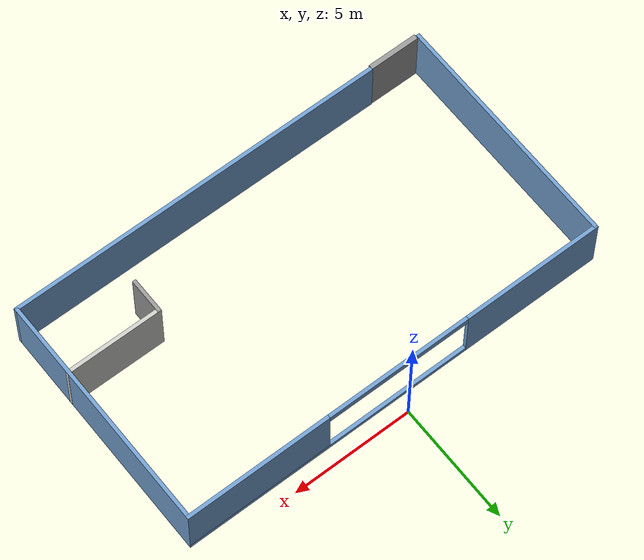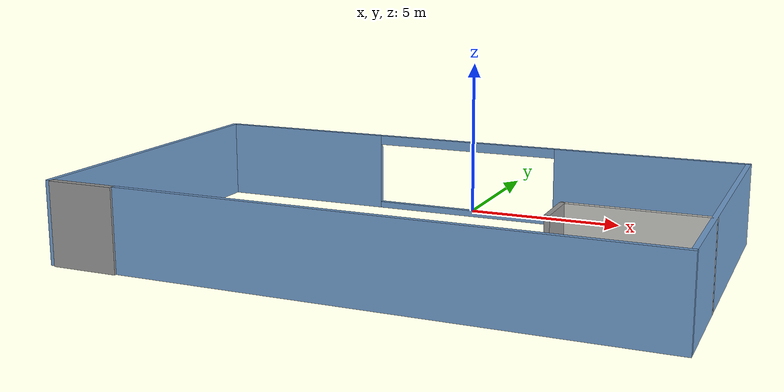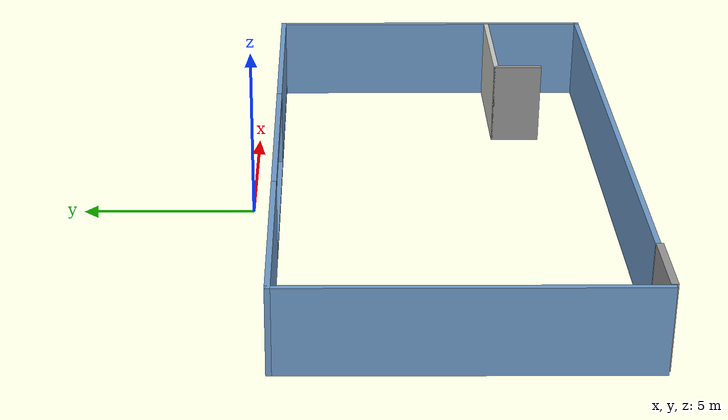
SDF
<?xml version='1.0'?>
<sdf version='1.7'>
  <model name='small_hospital'>
    <pose>0.066291 -5.3125 0 0 -0 0</pose>
    <link name='Door_0'>
      <collision name='Door_0_Collision'>
        <geometry>
          <box>
            <size>2.09068 0.2 2.5</size>
          </box>
        </geometry>
        <pose>0 0 1.25 0 -0 0</pose>
      </collision>
      <visual name='Door_0_Visual'>
        <pose>0 0 1.25 0 -0 0</pose>
        <geometry>
          <box>
            <size>2.09068 0.2 2.5</size>
          </box>
        </geometry>
        <material>
          <script>
            <uri>file://media/materials/scripts/gazebo.material</uri>
            <name>Gazebo/Grey</name>
          </script>
        </material>
      </visual>
      <pose>-7.78719 -5.27904 0 0 -0 0</pose>
    </link>
    <link name='Wall_0'>
      <collision name='Wall_0_Collision'>
        <geometry>
          <box>
            <size>10 0.15 2.5</size>
          </box>
        </geometry>
        <pose>0 0 1.25 0 -0 0</pose>
      </collision>
      <visual name='Wall_0_Visual'>
        <pose>0 0 1.25 0 -0 0</pose>
        <geometry>
          <box>
            <size>10 0.15 2.5</size>
          </box>
        </geometry>
        <material>
          <script>
            <uri>file://media/materials/scripts/gazebo.material</uri>
            <name>Gazebo/Grey</name>
          </script>
          <ambient>0.447059 0.623529 0.811765 1</ambient>
        </material>
        <meta>
          <layer>0</layer>
        </meta>
      </visual>
      <pose>-8.92629 -0.3125 0 0 -0 -1.5708</pose>
    </link>
    <link name='Wall_2'>
      <pose>-0.001291 4.6125 0 0 -0 0</pose>
      <visual name='Wall_2_Visual_0'>
        <pose>-6.0645 0 1.25 0 -0 0</pose>
        <geometry>
          <box>
            <size>5.87099 0.15 2.5</size>
          </box>
        </geometry>
        <material>
          <script>
            <uri>file://media/materials/scripts/gazebo.material</uri>
            <name>Gazebo/Grey</name>
          </script>
          <ambient>0.447059 0.623529 0.811765 1</ambient>
        </material>
        <meta>
          <layer>0</layer>
        </meta>
      </visual>
      <collision name='Wall_2_Collision_0'>
        <geometry>
          <box>
            <size>5.87099 0.15 2.5</size>
          </box>
        </geometry>
        <pose>-6.0645 0 1.25 0 -0 0</pose>
      </collision>
      <visual name='Wall_2_Visual_1'>
        <pose>2.93549 0 0.1 0 -0 0</pose>
        <geometry>
          <box>
            <size>12.129 0.15 0.2</size>
          </box>
        </geometry>
        <material>
          <script>
            <uri>file://media/materials/scripts/gazebo.material</uri>
            <name>Gazebo/Grey</name>
          </script>
          <ambient>0.447059 0.623529 0.811765 1</ambient>
        </material>
        <meta>
          <layer>0</layer>
        </meta>
      </visual>
      <collision name='Wall_2_Collision_1'>
        <geometry>
          <box>
            <size>12.129 0.15 0.2</size>
          </box>
        </geometry>
        <pose>2.93549 0 0.1 0 -0 0</pose>
      </collision>
      <visual name='Wall_2_Visual_2'>
        <pose>5.97049 0 1.35 0 -0 0</pose>
        <geometry>
          <box>
            <size>6.05901 0.15 2.3</size>
          </box>
        </geometry>
        <material>
          <script>
            <uri>file://media/materials/scripts/gazebo.material</uri>
            <name>Gazebo/Grey</name>
          </script>
          <ambient>0.447059 0.623529 0.811765 1</ambient>
        </material>
        <meta>
          <layer>0</layer>
        </meta>
      </visual>
      <collision name='Wall_2_Collision_2'>
        <geometry>
          <box>
            <size>6.05901 0.15 2.3</size>
          </box>
        </geometry>
        <pose>5.97049 0 1.35 0 -0 0</pose>
      </collision>
      <visual name='Wall_2_Visual_3'>
        <pose>-0.09401 0 2.35 0 -0 0</pose>
        <geometry>
          <box>
            <size>6.07 0.15 0.3</size>
          </box>
        </geometry>
        <material>
          <script>
            <uri>file://media/materials/scripts/gazebo.material</uri>
            <name>Gazebo/Grey</name>
          </script>
          <ambient>0.447059 0.623529 0.811765 1</ambient>
        </material>
        <meta>
          <layer>0</layer>
        </meta>
      </visual>
      <collision name='Wall_2_Collision_3'>
        <geometry>
          <box>
            <size>6.07 0.15 0.3</size>
          </box>
        </geometry>
        <pose>-0.09401 0 2.35 0 -0 0</pose>
      </collision>
    </link>
    <link name='Wall_3'>
      <collision name='Wall_3_Collision'>
        <geometry>
          <box>
            <size>10 0.15 2.5</size>
          </box>
        </geometry>
        <pose>0 0 1.25 0 -0 0</pose>
      </collision>
      <visual name='Wall_3_Visual'>
        <pose>0 0 1.25 0 -0 0</pose>
        <geometry>
          <box>
            <size>10 0.15 2.5</size>
          </box>
        </geometry>
        <material>
          <script>
            <uri>file://media/materials/scripts/gazebo.material</uri>
            <name>Gazebo/Grey</name>
          </script>
          <ambient>0.447059 0.623529 0.811765 1</ambient>
        </material>
        <meta>
          <layer>0</layer>
        </meta>
      </visual>
      <pose>8.92371 -0.3125 0 0 -0 -1.5708</pose>
    </link>
    <link name='Wall_4'>
      <collision name='Wall_4_Collision'>
        <geometry>
          <box>
            <size>15.75 0.15 2.5</size>
          </box>
        </geometry>
        <pose>0 0 1.25 0 -0 0</pose>
      </collision>
      <visual name='Wall_4_Visual'>
        <pose>0 0 1.25 0 -0 0</pose>
        <geometry>
          <box>
            <size>15.75 0.15 2.5</size>
          </box>
        </geometry>
        <material>
          <script>
            <uri>file://media/materials/scripts/gazebo.material</uri>
            <name>Gazebo/Grey</name>
          </script>
          <ambient>0.447059 0.623529 0.811765 1</ambient>
        </material>
        <meta>
          <layer>0</layer>
        </meta>
      </visual>
      <pose>1.12371 -5.2375 0 0 -0 3.14159</pose>
    </link>
    <link name='Wall_6'>
      <collision name='Wall_6_Collision'>
        <geometry>
          <box>
            <size>4 0.15 2.5</size>
          </box>
        </geometry>
        <pose>0 0 1.25 0 -0 0</pose>
      </collision>
      <visual name='Wall_6_Visual'>
        <pose>0 0 1.25 0 -0 0</pose>
        <geometry>
          <box>
            <size>4 0.15 2.5</size>
          </box>
        </geometry>
        <material>
          <script>
            <uri>file://media/materials/scripts/gazebo.material</uri>
            <name>Gazebo/CeilingTiled</name>
          </script>
          <ambient>1 1 1 1</ambient>
        </material>
        <meta>
          <layer>0</layer>
        </meta>
      </visual>
      <pose>7.00129 -2.19638 0 0 -0 3.14159</pose>
    </link>
    <link name='Wall_7'>
      <collision name='Wall_7_Collision'>
        <geometry>
          <box>
            <size>1.5 0.15 2.5</size>
          </box>
        </geometry>
        <pose>0 0 1.25 0 -0 0</pose>
      </collision>
      <visual name='Wall_7_Visual'>
        <pose>0 0 1.25 0 -0 0</pose>
        <geometry>
          <box>
            <size>1.5 0.15 2.5</size>
          </box>
        </geometry>
        <material>
          <script>
            <uri>file://media/materials/scripts/gazebo.material</uri>
            <name>Gazebo/Grey</name>
          </script>
          <ambient>1 1 1 1</ambient>
        </material>
        <meta>
          <layer>0</layer>
        </meta>
      </visual>
      <pose>5.07629 -2.87138 0 0 -0 -1.5708</pose>
    </link>
    <static>1</static>
  </model>
</sdf>
